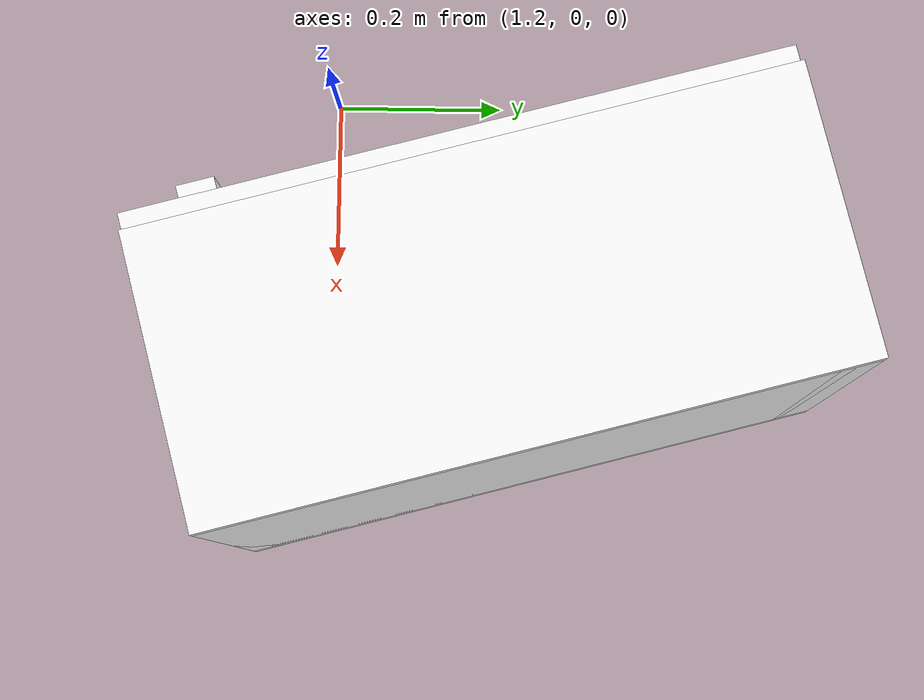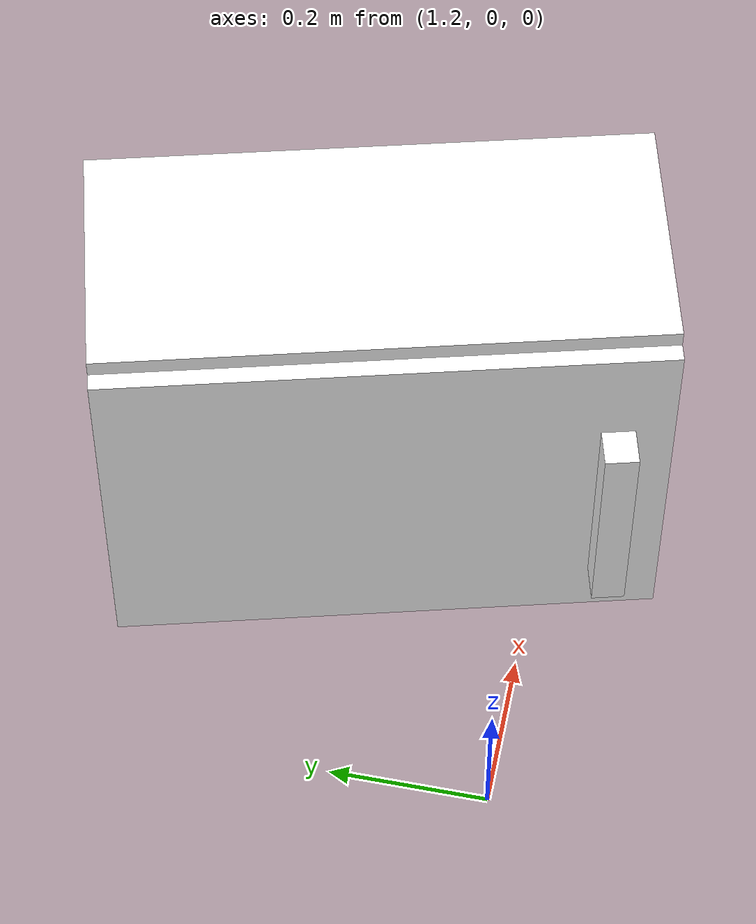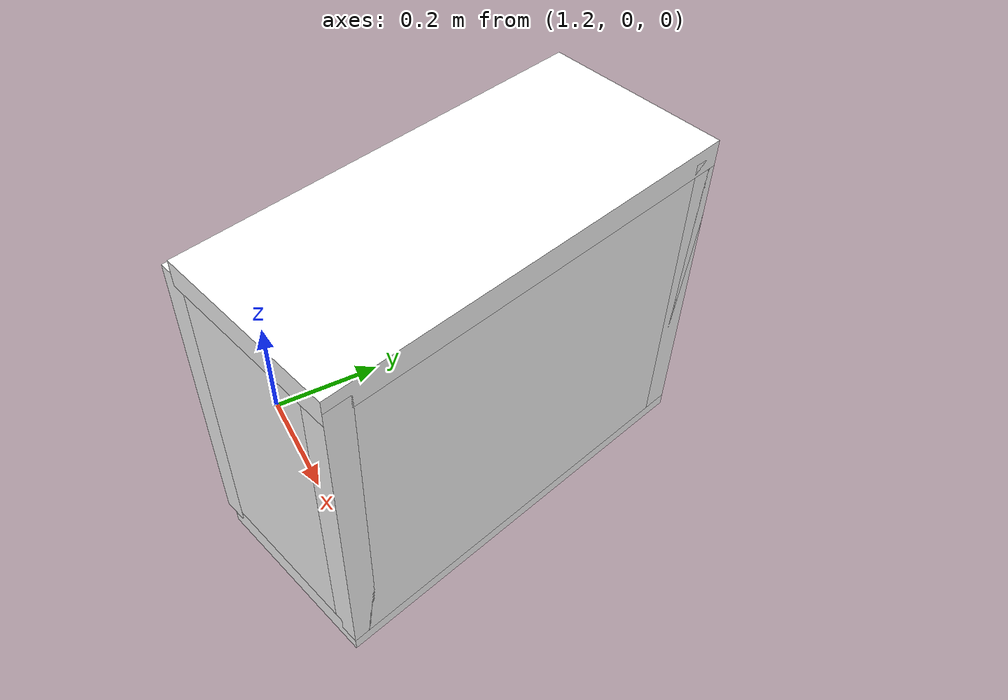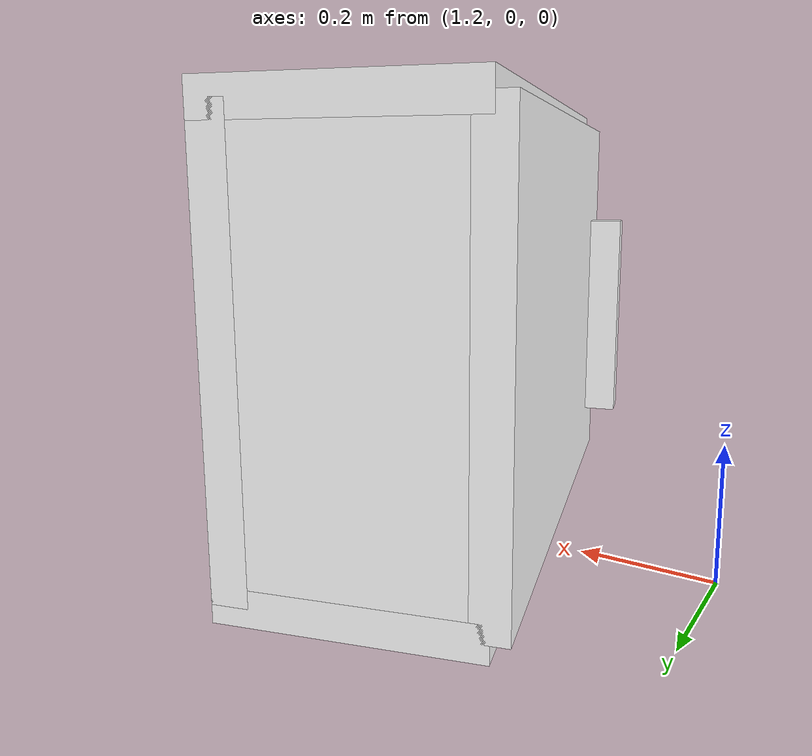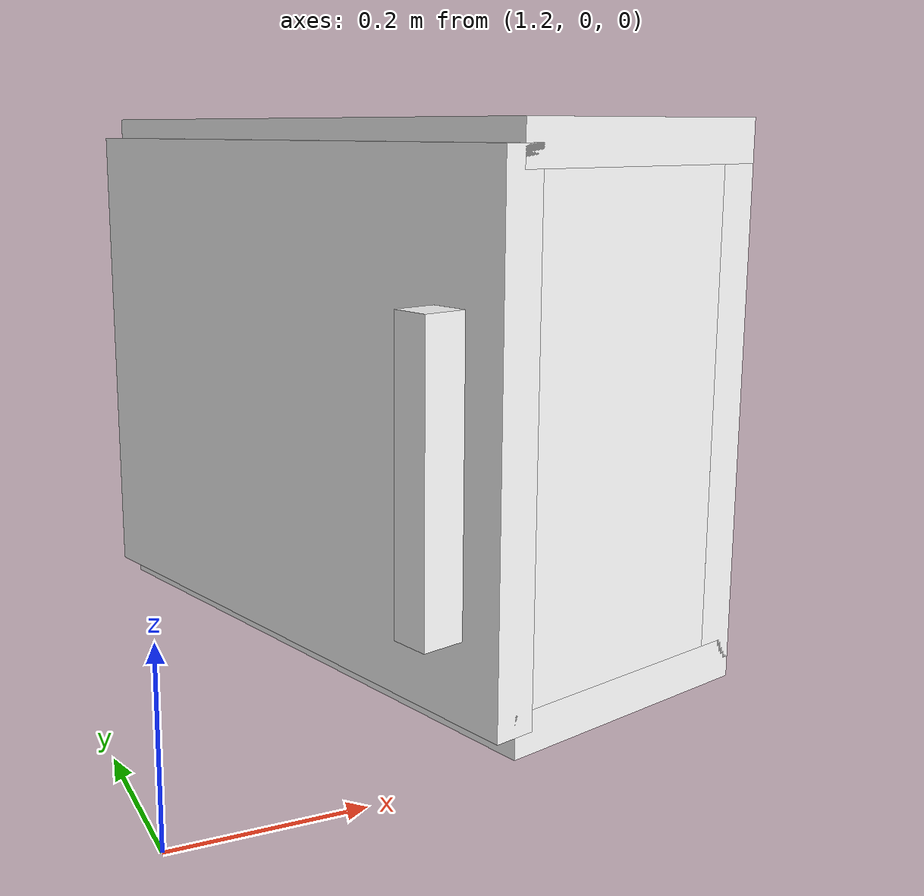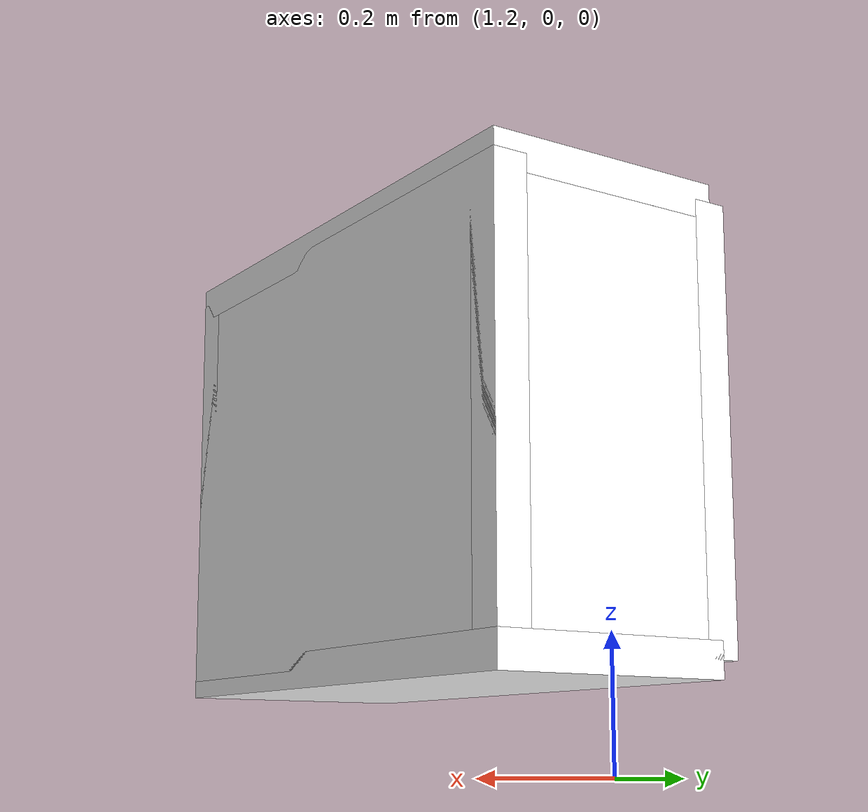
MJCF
<mujoco model="cabinet">
    <compiler angle="radian" eulerseq='zxy' />
    <option gravity = "0 0 0" />
    <option>
        <flag contact = "disable"/>
    </option>
    <statistic	extent="1.0" center="0.0 0.0 0.0"/>
    <visual>
        <map fogstart="3" fogend="5" force="0.1" znear=" 0.100000 " zfar=" 12.000000 "/>
    </visual>
    <size njmax="500" nconmax="100" />
    <actuator>
        <velocity joint="bottom_left_hinge" name="viva_revolution" kv='10'></velocity>
    </actuator>
    <asset>
        <texture builtin="flat" name="tabletex" height="32" width="32" rgb1="1 1 1" type="cube"></texture>
        <texture builtin="flat" name="objtex" height="32" width="32" rgb1="1 1 1" type="cube"></texture>
        <texture builtin="flat" name="handletex" height="32" width="32" rgb1="1 1 1" type="cube"></texture>
        <texture builtin="flat" name="wallpaper" height="32" width="32" rgb1="1 1 1" type="cube"></texture>
        <material name="geomTable" shininess="0.03" specular="0.75" texture="tabletex"></material>
        <material name="geomObj" shininess="0.03" specular="0.75" texture="objtex"></material>
        <material name="geomHandle" shininess="0.03" specular="0.75" texture="handletex"></material>
        <material name="bg" shininess="0.03" specular="0.75" texture="wallpaper"></material>
    </asset>
    <worldbody>
            <body name="cabinet_bottom" pos= " 1.529206 0.205030 0.123969 "  quat= " -0.129614 0.000000 0.000000 0.991565" >
                <inertial pos="0 0 0" mass="1" diaginertia="1 1 1" />
                <geom size= " 0.146587 0.333141 0.020682 "  type="box" material="geomObj" name="b"/>
                <body name="cabinet_left" pos= " 0.000000 -0.312458 0.252003 " >
                    <inertial pos="0 0 0" mass="1" diaginertia="1 1 1" />
                    <geom size= " 0.146587 0.020682 0.252003 "  type="box" material="geomObj" name="c" />
                </body>
                <body name="cabinet_right" pos= " 0.000000 0.312458 0.252003 " >
                    <inertial pos="0 0 0" mass="1" diaginertia="1 1 1" />
                    <geom size= " 0.146587 0.020682 0.252003 "  type="box" material="geomObj" name="d" />
                </body>
                <body name="cabinet_top" pos= " 0.000000 0.000000 0.504006 " >
                    <inertial pos="0 0 0" mass="1" diaginertia="1 1 1" />
                    <geom size= " 0.146587 0.333141 0.020682 "  type="box" material="geomObj" name="e"/>
                </body>
                <body name="cabinet_back" pos= " -0.125905 0.000000 0.252003 "  >
                    <inertial pos="0 0 0" mass="1" diaginertia="1 1 1" />
                    <geom size= " 0.020682 0.333141 0.252003 "  type="box" material="geomObj" name="f" />
                </body>
                <body name="cabinet_left_hinge" pos= " 0.146587 -0.333141 0.252003 " >
                    <inertial pos= " 0.000000 0.333141 0.000000 "  mass="1" diaginertia="1 1 1" />
                    <joint name="bottom_left_hinge" type="hinge" pos="0 0 0" axis="0 0 1" limited="true" range= "-2.3 0"  />
                    <geom size= " 0.020682 0.333141 0.252003 "  pos= " 0.000000 0.333141 0.000000 "  type="box" material="geomObj" name="g"/>
                    <body name="handle_link" pos= " 0.036647 0.600535 -0.027626 " >
                        <inertial pos="0 0 0" mass="1" diaginertia="1 1 1" />
                        <geom size= " 0.027572 0.020023 0.144912 "  type="box" material="geomHandle" name="h"/>
                    </body>
                </body>
            </body>
        <body name="external_camera_body_0" pos="0.0 0 0.00">
            <camera euler="-1.57 1.57 0.0" fovy=" 54.280851 " name="external_camera_0" pos="0.0 0 0"></camera>
            <inertial pos= " 0.00 0.0 0.000000 " mass="1" diaginertia="1 1 1" />
            <joint name="cam_j" pos="0.0 0 0" axis = "1 0 0" type="free" />
        </body>
    </worldbody>
</mujoco>
